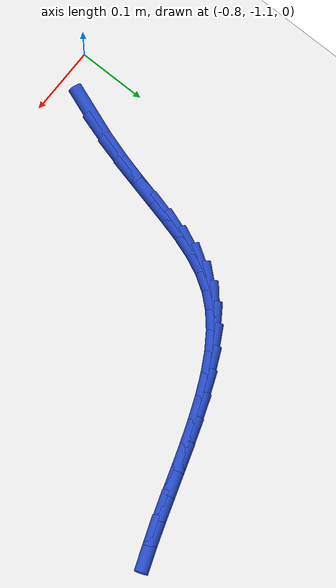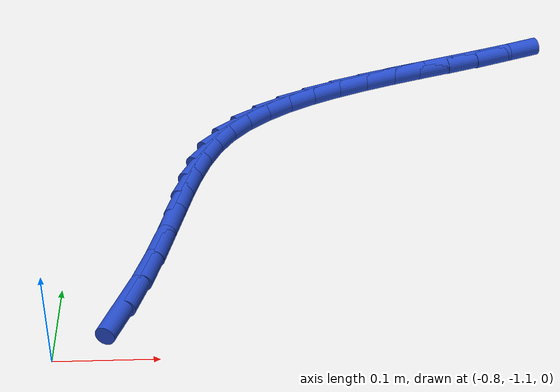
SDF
<sdf version="1.6">
 <world name="default">
  <model name="ground_plane">
   <static>1</static>
   <link name="link">
    <collision name="collision">
     <geometry><plane><normal>0 0 1</normal><size>100 100</size></plane></geometry>
     <surface><friction><ode><mu>100</mu><mu2>50</mu2></ode></friction></surface>
    </collision>
    <visual name="visual">
     <cast_shadows>0</cast_shadows>
     <geometry><plane><normal>0 0 1</normal><size>100 100</size></plane></geometry>
     <material>
      <script><uri>file://media/materials/scripts/gazebo.material</uri><name>Gazebo/WhiteGlow</name></script>
     </material>
    </visual>
   </link>
  </model>
  <model name="line">
   <link name="link_208">
    <pose>-0.7383894501927266 -1.0405265428602604 0.01 0 1.57 1.2150880783350013</pose>
    <collision name="collision">
     <geometry><cylinder><radius>0.01</radius><length>0.08</length></cylinder></geometry>
    </collision>
    <visual name="visual">
     <material>
      <script><name>Gazebo/Blue</name><uri>file://media/materials/scripts/gazebo.material</uri></script>
     </material>
     <geometry><cylinder><radius>0.01</radius><length>0.08</length></cylinder></geometry>
    </visual>
   </link>
   <link name="link_209">
    <pose>-0.7238349099779239 -1.0013499281549734 0.01 0 1.57 1.2714298631835788</pose>
    <collision name="collision">
     <geometry><cylinder><radius>0.01</radius><length>0.08</length></cylinder></geometry>
    </collision>
    <visual name="visual">
     <material>
      <script><name>Gazebo/Blue</name><uri>file://media/materials/scripts/gazebo.material</uri></script>
     </material>
     <geometry><cylinder><radius>0.01</radius><length>0.08</length></cylinder></geometry>
    </visual>
   </link>
   <link name="link_210">
    <pose>-0.7121738830220417 -0.96356823159507 0.01 0 1.57 1.3135969471497426</pose>
    <collision name="collision">
     <geometry><cylinder><radius>0.01</radius><length>0.08</length></cylinder></geometry>
    </collision>
    <visual name="visual">
     <material>
      <script><name>Gazebo/Blue</name><uri>file://media/materials/scripts/gazebo.material</uri></script>
     </material>
     <geometry><cylinder><radius>0.01</radius><length>0.08</length></cylinder></geometry>
    </visual>
   </link>
   <link name="link_211">
    <pose>-0.7026729125917147 -0.9274462959694487 0.01 0 1.57 1.3361425635268298</pose>
    <collision name="collision">
     <geometry><cylinder><radius>0.01</radius><length>0.08</length></cylinder></geometry>
    </collision>
    <visual name="visual">
     <material>
      <script><name>Gazebo/Blue</name><uri>file://media/materials/scripts/gazebo.material</uri></script>
     </material>
     <geometry><cylinder><radius>0.01</radius><length>0.08</length></cylinder></geometry>
    </visual>
   </link>
   <link name="link_212">
    <pose>-0.6944658013410857 -0.8931151994336621 0.01 0 1.57 1.3352149830764393</pose>
    <collision name="collision">
     <geometry><cylinder><radius>0.01</radius><length>0.08</length></cylinder></geometry>
    </collision>
    <visual name="visual">
     <material>
      <script><name>Gazebo/Blue</name><uri>file://media/materials/scripts/gazebo.material</uri></script>
     </material>
     <geometry><cylinder><radius>0.01</radius><length>0.08</length></cylinder></geometry>
    </visual>
   </link>
   <link name="link_213">
    <pose>-0.6866863519242965 -0.8607060201432621 0.01 0 1.57 1.306414799355682</pose>
    <collision name="collision">
     <geometry><cylinder><radius>0.01</radius><length>0.08</length></cylinder></geometry>
    </collision>
    <visual name="visual">
     <material>
      <script><name>Gazebo/Blue</name><uri>file://media/materials/scripts/gazebo.material</uri></script>
     </material>
     <geometry><cylinder><radius>0.01</radius><length>0.08</length></cylinder></geometry>
    </visual>
   </link>
   <link name="link_214">
    <pose>-0.678468366995489 -0.8303498362537999 0.01 0 1.57 1.2448343231041317</pose>
    <collision name="collision">
     <geometry><cylinder><radius>0.01</radius><length>0.08</length></cylinder></geometry>
    </collision>
    <visual name="visual">
     <material>
      <script><name>Gazebo/Blue</name><uri>file://media/materials/scripts/gazebo.material</uri></script>
     </material>
     <geometry><cylinder><radius>0.01</radius><length>0.08</length></cylinder></geometry>
    </visual>
   </link>
   <link name="link_215">
    <pose>-0.6689456492088057 -0.8021777259208277 0.01 0 1.57 1.146078061931795</pose>
    <collision name="collision">
     <geometry><cylinder><radius>0.01</radius><length>0.08</length></cylinder></geometry>
    </collision>
    <visual name="visual">
     <material>
      <script><name>Gazebo/Blue</name><uri>file://media/materials/scripts/gazebo.material</uri></script>
     </material>
     <geometry><cylinder><radius>0.01</radius><length>0.08</length></cylinder></geometry>
    </visual>
   </link>
   <link name="link_216">
    <pose>-0.6572520012183882 -0.7763207672998974 0.01 0 1.57 1.0091673687938132</pose>
    <collision name="collision">
     <geometry><cylinder><radius>0.01</radius><length>0.08</length></cylinder></geometry>
    </collision>
    <visual name="visual">
     <material>
      <script><name>Gazebo/Blue</name><uri>file://media/materials/scripts/gazebo.material</uri></script>
     </material>
     <geometry><cylinder><radius>0.01</radius><length>0.08</length></cylinder></geometry>
    </visual>
   </link>
   <link name="link_217">
    <pose>-0.6425214325344976 -0.7529099684165895 0.01 0 1.57 0.850821261627689</pose>
    <collision name="collision">
     <geometry><cylinder><radius>0.01</radius><length>0.08</length></cylinder></geometry>
    </collision>
    <visual name="visual">
     <material>
      <script><name>Gazebo/Blue</name><uri>file://media/materials/scripts/gazebo.material</uri></script>
     </material>
     <geometry><cylinder><radius>0.01</radius><length>0.08</length></cylinder></geometry>
    </visual>
   </link>
   <link name="link_218">
    <pose>-0.624166901226083 -0.7319817659850042 0.01 0 1.57 0.7102270525507205</pose>
    <collision name="collision">
     <geometry><cylinder><radius>0.01</radius><length>0.08</length></cylinder></geometry>
    </collision>
    <visual name="visual">
     <material>
      <script><name>Gazebo/Blue</name><uri>file://media/materials/scripts/gazebo.material</uri></script>
     </material>
     <geometry><cylinder><radius>0.01</radius><length>0.08</length></cylinder></geometry>
    </visual>
   </link>
   <link name="link_219">
    <pose>-0.602431646102324 -0.713291108480442 0.01 0 1.57 0.59555401960741</pose>
    <collision name="collision">
     <geometry><cylinder><radius>0.01</radius><length>0.08</length></cylinder></geometry>
    </collision>
    <visual name="visual">
     <material>
      <script><name>Gazebo/Blue</name><uri>file://media/materials/scripts/gazebo.material</uri></script>
     </material>
     <geometry><cylinder><radius>0.01</radius><length>0.08</length></cylinder></geometry>
    </visual>
   </link>
   <link name="link_220">
    <pose>-0.5777126868793004 -0.6965408083782387 0.01 0 1.57 0.5053429201083948</pose>
    <collision name="collision">
     <geometry><cylinder><radius>0.01</radius><length>0.08</length></cylinder></geometry>
    </collision>
    <visual name="visual">
     <material>
      <script><name>Gazebo/Blue</name><uri>file://media/materials/scripts/gazebo.material</uri></script>
     </material>
     <geometry><cylinder><radius>0.01</radius><length>0.08</length></cylinder></geometry>
    </visual>
   </link>
   <link name="link_221">
    <pose>-0.5504070432730914 -0.6814336781537301 0.01 0 1.57 0.4365344653710112</pose>
    <collision name="collision">
     <geometry><cylinder><radius>0.01</radius><length>0.08</length></cylinder></geometry>
    </collision>
    <visual name="visual">
     <material>
      <script><name>Gazebo/Blue</name><uri>file://media/materials/scripts/gazebo.material</uri></script>
     </material>
     <geometry><cylinder><radius>0.01</radius><length>0.08</length></cylinder></geometry>
    </visual>
   </link>
   <link name="link_222">
    <pose>-0.5209117349997763 -0.6676725302822512 0.01 0 1.57 0.3859271671018597</pose>
    <collision name="collision">
     <geometry><cylinder><radius>0.01</radius><length>0.08</length></cylinder></geometry>
    </collision>
    <visual name="visual">
     <material>
      <script><name>Gazebo/Blue</name><uri>file://media/materials/scripts/gazebo.material</uri></script>
     </material>
     <geometry><cylinder><radius>0.01</radius><length>0.08</length></cylinder></geometry>
    </visual>
   </link>
   <link name="link_223">
    <pose>-0.48962378177543425 -0.6549601772391377 0.01 0 1.57 0.3508180463206103</pose>
    <collision name="collision">
     <geometry><cylinder><radius>0.01</radius><length>0.08</length></cylinder></geometry>
    </collision>
    <visual name="visual">
     <material>
      <script><name>Gazebo/Blue</name><uri>file://media/materials/scripts/gazebo.material</uri></script>
     </material>
     <geometry><cylinder><radius>0.01</radius><length>0.08</length></cylinder></geometry>
    </visual>
   </link>
   <link name="link_224">
    <pose>-0.456940203316145 -0.6429994314997254 0.01 0 1.57 0.3291850909574131</pose>
    <collision name="collision">
     <geometry><cylinder><radius>0.01</radius><length>0.08</length></cylinder></geometry>
    </collision>
    <visual name="visual">
     <material>
      <script><name>Gazebo/Blue</name><uri>file://media/materials/scripts/gazebo.material</uri></script>
     </material>
     <geometry><cylinder><radius>0.01</radius><length>0.08</length></cylinder></geometry>
    </visual>
   </link>
   <link name="link_225">
    <pose>-0.42325801933798757 -0.6314931055393496 0.01 0 1.57 0.31967973574296743</pose>
    <collision name="collision">
     <geometry><cylinder><radius>0.01</radius><length>0.08</length></cylinder></geometry>
    </collision>
    <visual name="visual">
     <material>
      <script><name>Gazebo/Blue</name><uri>file://media/materials/scripts/gazebo.material</uri></script>
     </material>
     <geometry><cylinder><radius>0.01</radius><length>0.08</length></cylinder></geometry>
    </visual>
   </link>
   <link name="link_226">
    <pose>-0.3889742495570414 -0.6201440118333458 0.01 0 1.57 0.32156622911785193</pose>
    <collision name="collision">
     <geometry><cylinder><radius>0.01</radius><length>0.08</length></cylinder></geometry>
    </collision>
    <visual name="visual">
     <material>
      <script><name>Gazebo/Blue</name><uri>file://media/materials/scripts/gazebo.material</uri></script>
     </material>
     <geometry><cylinder><radius>0.01</radius><length>0.08</length></cylinder></geometry>
    </visual>
   </link>
   <link name="link_227">
    <pose>-0.35448591368938576 -0.6086549628570496 0.01 0 1.57 0.33466372480447415</pose>
    <collision name="collision">
     <geometry><cylinder><radius>0.01</radius><length>0.08</length></cylinder></geometry>
    </collision>
    <visual name="visual">
     <material>
      <script><name>Gazebo/Blue</name><uri>file://media/materials/scripts/gazebo.material</uri></script>
     </material>
     <geometry><cylinder><radius>0.01</radius><length>0.08</length></cylinder></geometry>
    </visual>
   </link>
   <link name="link_228">
    <pose>-0.32019003145110003 -0.5967287710857966 0.01 0 1.57 0.3593068615109591</pose>
    <collision name="collision">
     <geometry><cylinder><radius>0.01</radius><length>0.08</length></cylinder></geometry>
    </collision>
    <visual name="visual">
     <material>
      <script><name>Gazebo/Blue</name><uri>file://media/materials/scripts/gazebo.material</uri></script>
     </material>
     <geometry><cylinder><radius>0.01</radius><length>0.08</length></cylinder></geometry>
    </visual>
   </link>
  </model>
 </world>
</sdf>
